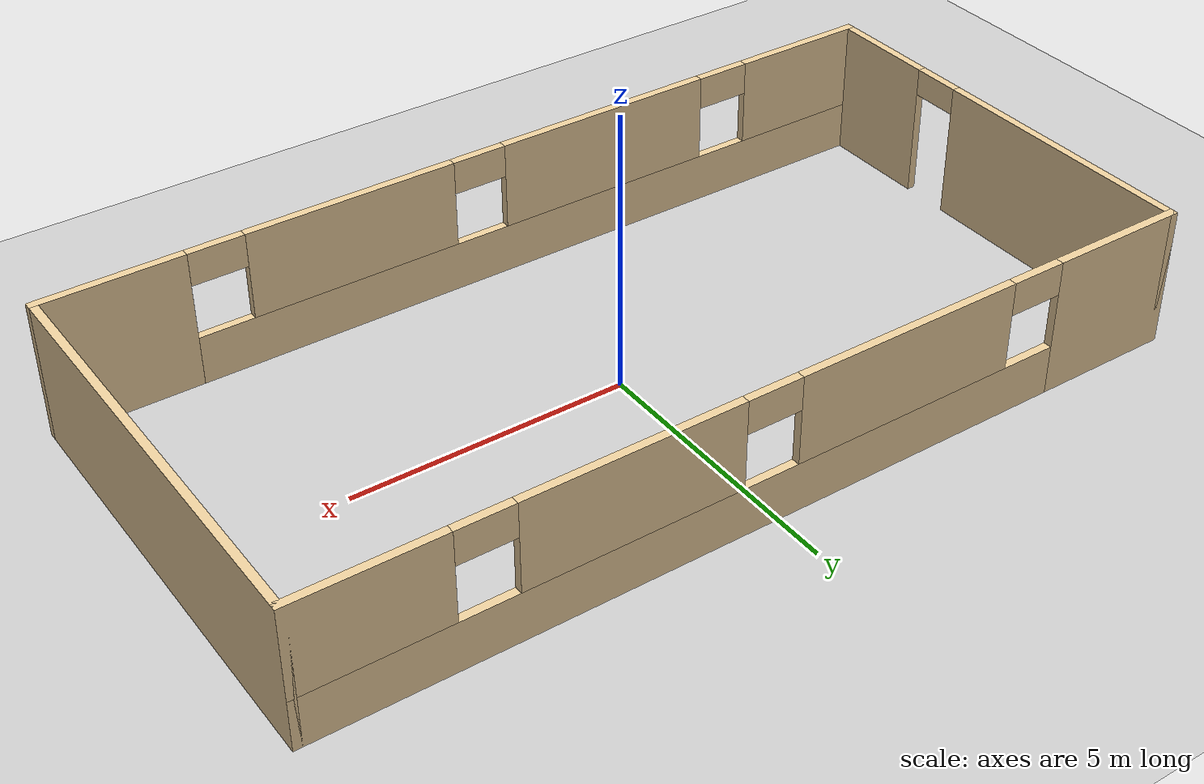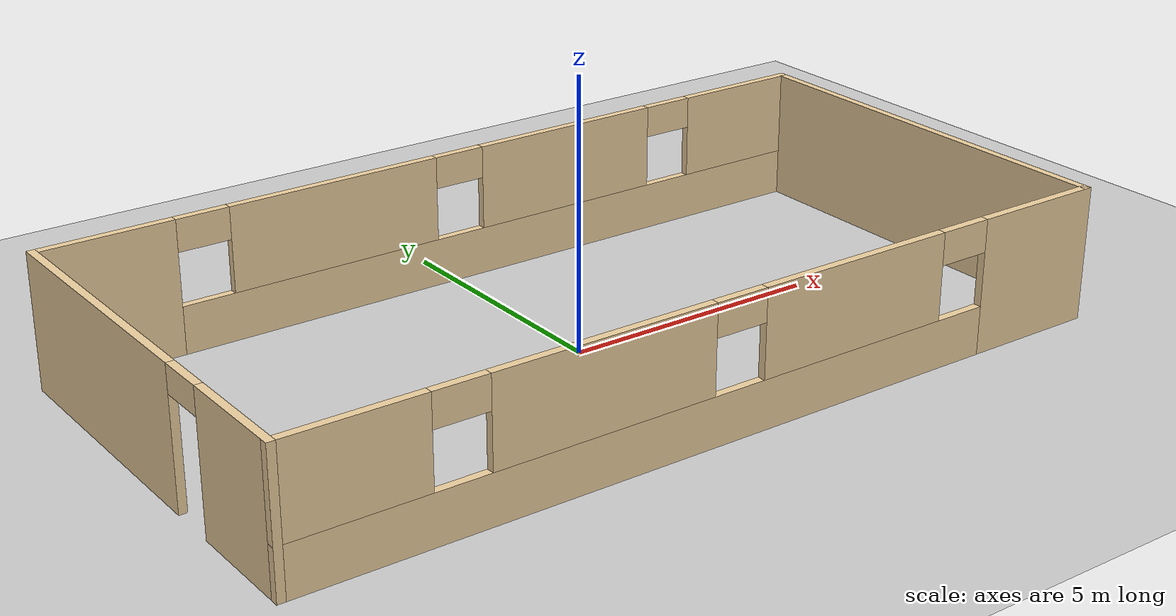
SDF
<sdf version="1.6">
 <world name="default">
  <light name="sun" type="directional">
   <pose>0 0 10 0 -0 0</pose>
   <diffuse>0.8 0.8 0.8 1</diffuse>
   <specular>0.2 0.2 0.2 1</specular>
   <attenuation>
    <range>1000</range>
    <constant>0.9</constant>
    <linear>0.01</linear>
    <quadratic>0.001</quadratic>
   </attenuation>
   <direction>-0.5 0.1 -0.9</direction>
  </light>
  <model name="ground_plane">
   <static>1</static>
   <link name="link">
    <collision name="collision">
     <geometry><plane><normal>0 0 1</normal><size>100 100</size></plane></geometry>
     <surface><friction><ode><mu>100</mu><mu2>50</mu2></ode></friction></surface>
    </collision>
    <visual name="visual">
     <cast_shadows>0</cast_shadows>
     <geometry><plane><normal>0 0 1</normal><size>100 100</size></plane></geometry>
     <material>
      <script><uri>file://media/materials/scripts/gazebo.material</uri><name>Gazebo/Grey</name></script>
     </material>
    </visual>
   </link>
  </model>
  <gravity>0 0 -9.8</gravity>
  <magnetic_field>6e-06 2.3e-05 -4.2e-05</magnetic_field>
  <atmosphere type="adiabatic"/>
  <physics name="default_physics" default="0" type="ode">
   <max_step_size>0.001</max_step_size>
   <real_time_factor>1</real_time_factor>
   <real_time_update_rate>1000</real_time_update_rate>
  </physics>
  <scene><ambient>0.4 0.4 0.4 1</ambient><background>0.7 0.7 0.7 1</background><shadows>1</shadows></scene>
  <spherical_coordinates>
   <surface_model>EARTH_WGS84</surface_model>
   <latitude_deg>0</latitude_deg>
   <longitude_deg>0</longitude_deg>
   <elevation>0</elevation>
   <heading_deg>0</heading_deg>
  </spherical_coordinates>
  <model name="Restaurant_1">
   <link name="Wall_44">
    <pose>0 4 0 0 -0 0</pose>
    <visual name="Wall_44_Visual_0">
     <pose>-6.79151 0 1.25 0 -0 0</pose>
     <geometry><box><size>2.56697 0.15 2.5</size></box></geometry>
     <material>
      <script><uri>file://media/materials/scripts/gazebo.material</uri><name>Gazebo/Grey</name></script>
      <ambient>0.921569 0.807843 0.615686 1</ambient>
     </material>
     <meta><layer>0</layer></meta>
    </visual>
    <collision name="Wall_44_Collision_0">
     <geometry><box><size>2.56697 0.15 2.5</size></box></geometry>
     <pose>-6.79151 0 1.25 0 -0 0</pose>
    </collision>
    <visual name="Wall_44_Visual_1">
     <pose>1.28349 0 0.45 0 -0 0</pose>
     <geometry><box><size>13.583 0.15 0.9</size></box></geometry>
     <material>
      <script><uri>file://media/materials/scripts/gazebo.material</uri><name>Gazebo/Grey</name></script>
      <ambient>0.921569 0.807843 0.615686 1</ambient>
     </material>
     <meta><layer>0</layer></meta>
    </visual>
    <collision name="Wall_44_Collision_1">
     <geometry><box><size>13.583 0.15 0.9</size></box></geometry>
     <pose>1.28349 0 0.45 0 -0 0</pose>
    </collision>
    <visual name="Wall_44_Visual_2">
     <pose>-2.42901 0 1.7 0 -0 0</pose>
     <geometry><box><size>4.15803 0.15 1.6</size></box></geometry>
     <material>
      <script><uri>file://media/materials/scripts/gazebo.material</uri><name>Gazebo/Grey</name></script>
      <ambient>0.921569 0.807843 0.615686 1</ambient>
     </material>
     <meta><layer>0</layer></meta>
    </visual>
    <collision name="Wall_44_Collision_2">
     <geometry><box><size>4.15803 0.15 1.6</size></box></geometry>
     <pose>-2.42901 0 1.7 0 -0 0</pose>
    </collision>
    <visual name="Wall_44_Visual_3">
     <pose>2.575 0 1.7 0 -0 0</pose>
     <geometry><box><size>3.85 0.15 1.6</size></box></geometry>
     <material>
      <script><uri>file://media/materials/scripts/gazebo.material</uri><name>Gazebo/Grey</name></script>
      <ambient>0.921569 0.807843 0.615686 1</ambient>
     </material>
     <meta><layer>0</layer></meta>
    </visual>
    <collision name="Wall_44_Collision_3">
     <geometry><box><size>3.85 0.15 1.6</size></box></geometry>
     <pose>2.575 0 1.7 0 -0 0</pose>
    </collision>
    <visual name="Wall_44_Visual_4">
     <pose>6.7875 0 1.7 0 -0 0</pose>
     <geometry><box><size>2.575 0.15 1.6</size></box></geometry>
     <material>
      <script><uri>file://media/materials/scripts/gazebo.material</uri><name>Gazebo/Grey</name></script>
      <ambient>0.921569 0.807843 0.615686 1</ambient>
     </material>
     <meta><layer>0</layer></meta>
    </visual>
    <collision name="Wall_44_Collision_4">
     <geometry><box><size>2.575 0.15 1.6</size></box></geometry>
     <pose>6.7875 0 1.7 0 -0 0</pose>
    </collision>
    <visual name="Wall_44_Visual_5">
     <pose>-5.00803 0 2.2 0 -0 0</pose>
     <geometry><box><size>1 0.15 0.6</size></box></geometry>
     <material>
      <script><uri>file://media/materials/scripts/gazebo.material</uri><name>Gazebo/Grey</name></script>
      <ambient>0.921569 0.807843 0.615686 1</ambient>
     </material>
     <meta><layer>0</layer></meta>
    </visual>
    <collision name="Wall_44_Collision_5">
     <geometry><box><size>1 0.15 0.6</size></box></geometry>
     <pose>-5.00803 0 2.2 0 -0 0</pose>
    </collision>
    <visual name="Wall_44_Visual_6">
     <pose>0.15 0 2.2 0 -0 0</pose>
     <geometry><box><size>1 0.15 0.6</size></box></geometry>
     <material>
      <script><uri>file://media/materials/scripts/gazebo.material</uri><name>Gazebo/Grey</name></script>
      <ambient>0.921569 0.807843 0.615686 1</ambient>
     </material>
     <meta><layer>0</layer></meta>
    </visual>
    <collision name="Wall_44_Collision_6">
     <geometry><box><size>1 0.15 0.6</size></box></geometry>
     <pose>0.15 0 2.2 0 -0 0</pose>
    </collision>
    <visual name="Wall_44_Visual_7">
     <pose>5 0 2.2 0 -0 0</pose>
     <geometry><box><size>1 0.15 0.6</size></box></geometry>
     <material>
      <script><uri>file://media/materials/scripts/gazebo.material</uri><name>Gazebo/Grey</name></script>
      <ambient>0.921569 0.807843 0.615686 1</ambient>
     </material>
     <meta><layer>0</layer></meta>
    </visual>
    <collision name="Wall_44_Collision_7">
     <geometry><box><size>1 0.15 0.6</size></box></geometry>
     <pose>5 0 2.2 0 -0 0</pose>
    </collision>
   </link>
   <link name="Wall_45">
    <collision name="Wall_45_Collision">
     <geometry><box><size>8.15 0.15 2.5</size></box></geometry>
     <pose>0 0 1.25 0 -0 0</pose>
    </collision>
    <visual name="Wall_45_Visual">
     <pose>0 0 1.25 0 -0 0</pose>
     <geometry><box><size>8.15 0.15 2.5</size></box></geometry>
     <material>
      <script><uri>file://media/materials/scripts/gazebo.material</uri><name>Gazebo/Grey</name></script>
      <ambient>0.921569 0.807843 0.615686 1</ambient>
     </material>
     <meta><layer>0</layer></meta>
    </visual>
    <pose>8 0 0 0 0 -1.5708</pose>
   </link>
   <link name="Wall_46">
    <pose>0 -4 0 0 -0 3.14159</pose>
    <visual name="Wall_46_Visual_0">
     <pose>-6.7875 0 1.25 0 -0 0</pose>
     <geometry><box><size>2.575 0.15 2.5</size></box></geometry>
     <material>
      <script><uri>file://media/materials/scripts/gazebo.material</uri><name>Gazebo/Grey</name></script>
      <ambient>0.921569 0.807843 0.615686 1</ambient>
     </material>
     <meta><layer>0</layer></meta>
    </visual>
    <collision name="Wall_46_Collision_0">
     <geometry><box><size>2.575 0.15 2.5</size></box></geometry>
     <pose>-6.7875 0 1.25 0 -0 0</pose>
    </collision>
    <visual name="Wall_46_Visual_1">
     <pose>1.2875 0 0.45 0 -0 0</pose>
     <geometry><box><size>13.575 0.15 0.9</size></box></geometry>
     <material>
      <script><uri>file://media/materials/scripts/gazebo.material</uri><name>Gazebo/Grey</name></script>
      <ambient>0.921569 0.807843 0.615686 1</ambient>
     </material>
     <meta><layer>0</layer></meta>
    </visual>
    <collision name="Wall_46_Collision_1">
     <geometry><box><size>13.575 0.15 0.9</size></box></geometry>
     <pose>1.2875 0 0.45 0 -0 0</pose>
    </collision>
    <visual name="Wall_46_Visual_2">
     <pose>-2.575 0 1.7 0 -0 0</pose>
     <geometry><box><size>3.85 0.15 1.6</size></box></geometry>
     <material>
      <script><uri>file://media/materials/scripts/gazebo.material</uri><name>Gazebo/Grey</name></script>
      <ambient>0.921569 0.807843 0.615686 1</ambient>
     </material>
     <meta><layer>0</layer></meta>
    </visual>
    <collision name="Wall_46_Collision_2">
     <geometry><box><size>3.85 0.15 1.6</size></box></geometry>
     <pose>-2.575 0 1.7 0 -0 0</pose>
    </collision>
    <visual name="Wall_46_Visual_3">
     <pose>2.425 0 1.7 0 -0 0</pose>
     <geometry><box><size>4.15 0.15 1.6</size></box></geometry>
     <material>
      <script><uri>file://media/materials/scripts/gazebo.material</uri><name>Gazebo/Grey</name></script>
      <ambient>0.921569 0.807843 0.615686 1</ambient>
     </material>
     <meta><layer>0</layer></meta>
    </visual>
    <collision name="Wall_46_Collision_3">
     <geometry><box><size>4.15 0.15 1.6</size></box></geometry>
     <pose>2.425 0 1.7 0 -0 0</pose>
    </collision>
    <visual name="Wall_46_Visual_4">
     <pose>6.7875 0 1.7 0 -0 0</pose>
     <geometry><box><size>2.575 0.15 1.6</size></box></geometry>
     <material>
      <script><uri>file://media/materials/scripts/gazebo.material</uri><name>Gazebo/Grey</name></script>
      <ambient>0.921569 0.807843 0.615686 1</ambient>
     </material>
     <meta><layer>0</layer></meta>
    </visual>
    <collision name="Wall_46_Collision_4">
     <geometry><box><size>2.575 0.15 1.6</size></box></geometry>
     <pose>6.7875 0 1.7 0 -0 0</pose>
    </collision>
    <visual name="Wall_46_Visual_5">
     <pose>-5 0 2.2 0 -0 0</pose>
     <geometry><box><size>1 0.15 0.6</size></box></geometry>
     <material>
      <script><uri>file://media/materials/scripts/gazebo.material</uri><name>Gazebo/Grey</name></script>
      <ambient>0.921569 0.807843 0.615686 1</ambient>
     </material>
     <meta><layer>0</layer></meta>
    </visual>
    <collision name="Wall_46_Collision_5">
     <geometry><box><size>1 0.15 0.6</size></box></geometry>
     <pose>-5 0 2.2 0 -0 0</pose>
    </collision>
    <visual name="Wall_46_Visual_6">
     <pose>-0.15 0 2.2 0 -0 0</pose>
     <geometry><box><size>1 0.15 0.6</size></box></geometry>
     <material>
      <script><uri>file://media/materials/scripts/gazebo.material</uri><name>Gazebo/Grey</name></script>
      <ambient>0.921569 0.807843 0.615686 1</ambient>
     </material>
     <meta><layer>0</layer></meta>
    </visual>
    <collision name="Wall_46_Collision_6">
     <geometry><box><size>1 0.15 0.6</size></box></geometry>
     <pose>-0.15 0 2.2 0 -0 0</pose>
    </collision>
    <visual name="Wall_46_Visual_7">
     <pose>5 0 2.2 0 -0 0</pose>
     <geometry><box><size>1 0.15 0.6</size></box></geometry>
     <material>
      <script><uri>file://media/materials/scripts/gazebo.material</uri><name>Gazebo/Grey</name></script>
      <ambient>0.921569 0.807843 0.615686 1</ambient>
     </material>
     <meta><layer>0</layer></meta>
    </visual>
    <collision name="Wall_46_Collision_7">
     <geometry><box><size>1 0.15 0.6</size></box></geometry>
     <pose>5 0 2.2 0 -0 0</pose>
    </collision>
   </link>
   <link name="Wall_47">
    <pose>-8 0 0 0 -0 1.5708</pose>
    <visual name="Wall_47_Visual_0">
     <pose>-3.0125 0 1.25 0 -0 0</pose>
     <geometry><box><size>2.125 0.15 2.5</size></box></geometry>
     <material>
      <script><uri>file://media/materials/scripts/gazebo.material</uri><name>Gazebo/Grey</name></script>
      <ambient>0.921569 0.807843 0.615686 1</ambient>
     </material>
     <meta><layer>0</layer></meta>
    </visual>
    <collision name="Wall_47_Collision_0">
     <geometry><box><size>2.125 0.15 2.5</size></box></geometry>
     <pose>-3.0125 0 1.25 0 -0 0</pose>
    </collision>
    <visual name="Wall_47_Visual_1">
     <pose>1.5125 0 1.25 0 -0 0</pose>
     <geometry><box><size>5.125 0.15 2.5</size></box></geometry>
     <material>
      <script><uri>file://media/materials/scripts/gazebo.material</uri><name>Gazebo/Grey</name></script>
      <ambient>0.921569 0.807843 0.615686 1</ambient>
     </material>
     <meta><layer>0</layer></meta>
    </visual>
    <collision name="Wall_47_Collision_1">
     <geometry><box><size>5.125 0.15 2.5</size></box></geometry>
     <pose>1.5125 0 1.25 0 -0 0</pose>
    </collision>
    <visual name="Wall_47_Visual_2">
     <pose>-1.5 0 2.25 0 -0 0</pose>
     <geometry><box><size>0.9 0.15 0.5</size></box></geometry>
     <material>
      <script><uri>file://media/materials/scripts/gazebo.material</uri><name>Gazebo/Grey</name></script>
      <ambient>0.921569 0.807843 0.615686 1</ambient>
     </material>
     <meta><layer>0</layer></meta>
    </visual>
    <collision name="Wall_47_Collision_2">
     <geometry><box><size>0.9 0.15 0.5</size></box></geometry>
     <pose>-1.5 0 2.25 0 -0 0</pose>
    </collision>
   </link>
   <static>1</static>
  </model>
 </world>
</sdf>
